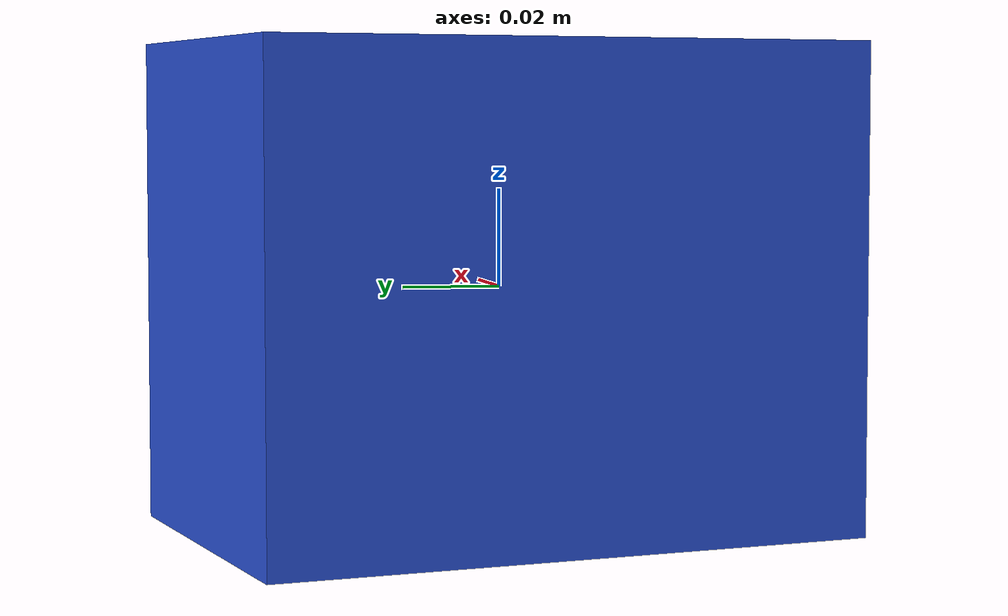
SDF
<sdf version="1.6"><model name="model_5"><static>true</static><link name="link"><pose>0 0 0 0 0 0.18147321670341787</pose><collision name="collision"><geometry><box><size>0.08225923749508698 0.12616140629232722 0.1</size></box></geometry></collision><visual name="visual"><geometry><box><size>0.08225923749508698 0.12616140629232722 0.1</size></box></geometry><material><script><name>Gazebo/Blue</name><uri>file://media/materials/scripts/gazebo.material</uri></script></material></visual></link></model></sdf>
